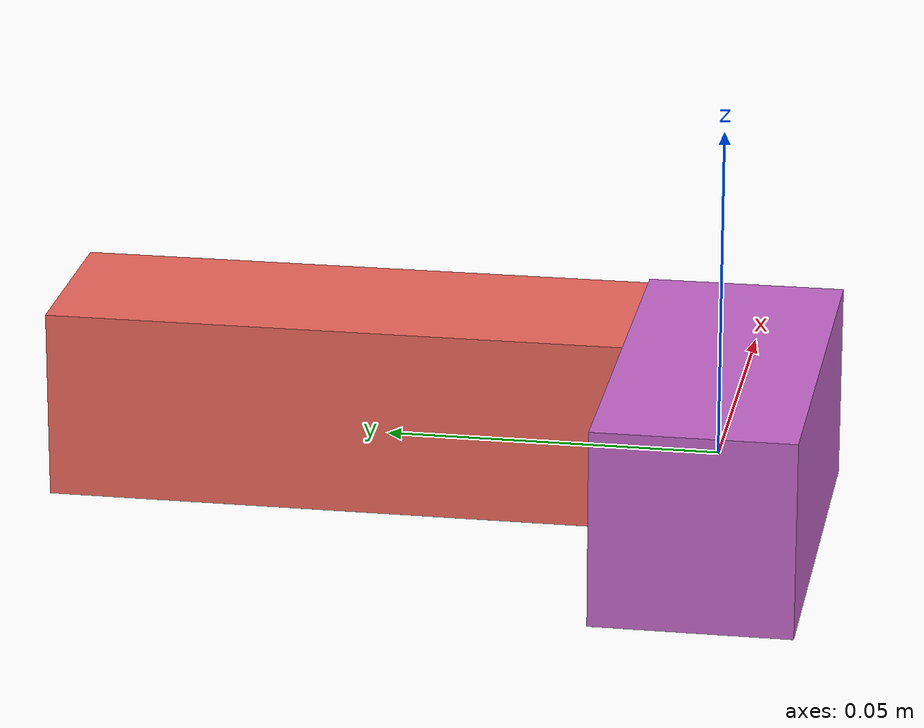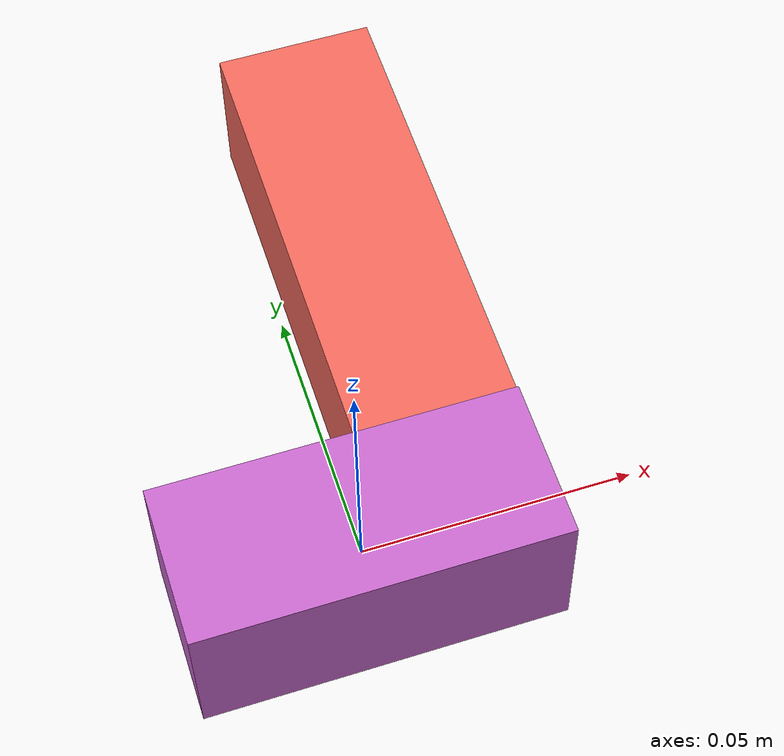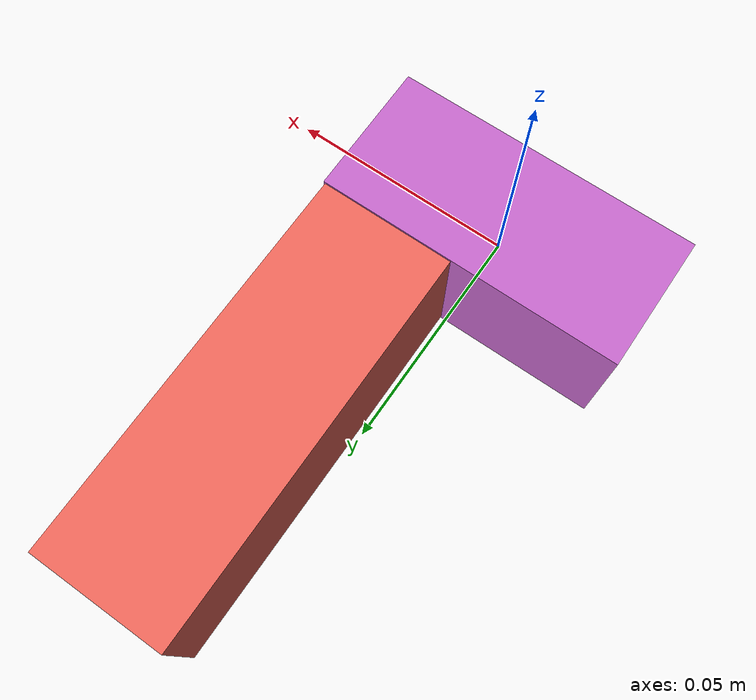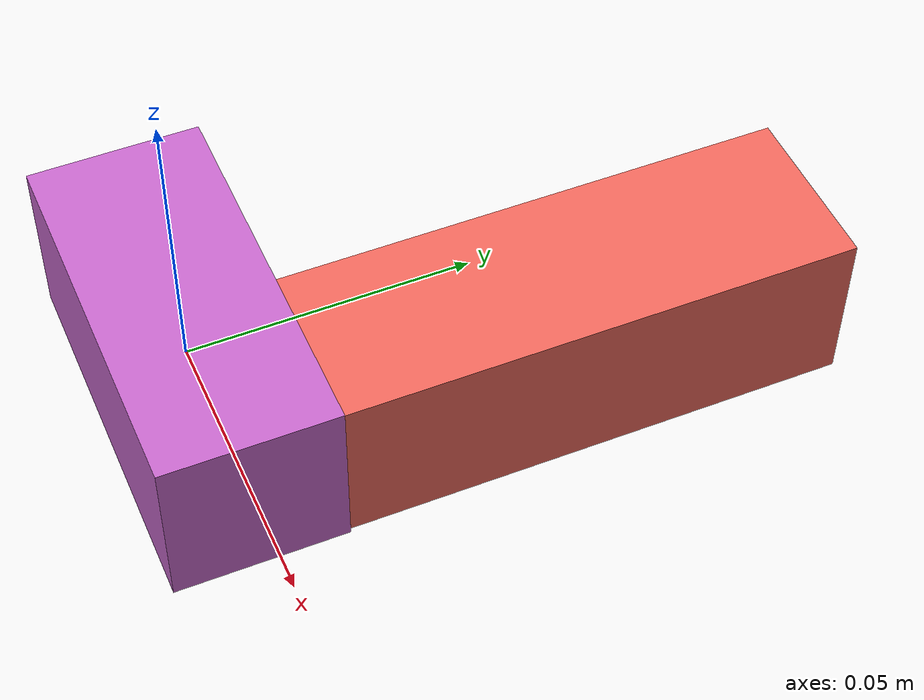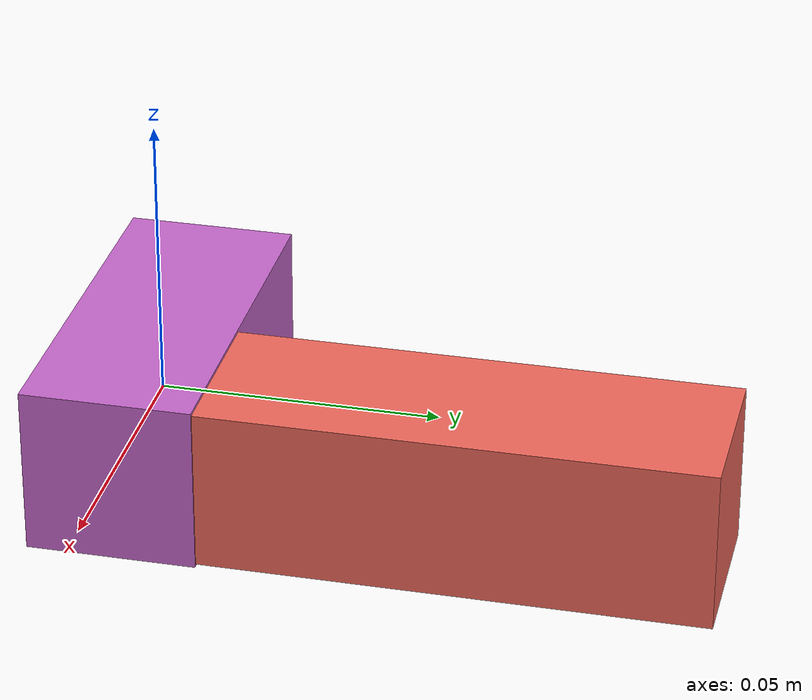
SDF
<sdf version="1.4"><world name="default"><model name="object0"><link name="link1"><pose>0 0 0 0 0 0</pose><inertial><pose>0 0 0 0 0 0</pose><mass>0.03648442818133094</mass><inertia><ixx>5.4726642271996415e-06</ixx><ixy>0</ixy><iyy>1.661519439117379e-05</iyy><ixz>0</ixz><iyz>0</iyz><izz>1.661519439117379e-05</izz></inertia></inertial><visual name="link1_visual"><pose>0 0  0 0 0 0</pose><geometry><box><size>0.0675637558913536 0.03 0.03</size></box></geometry><material><diffuse>0.7756489081730125 0.40550226643574266 0.7959513629315917 1</diffuse></material></visual><collision><pose>0 0  0 0 0 0</pose><geometry><box><size>0.0675637558913536 0.03 0.03</size></box></geometry></collision></link><link name="link2"><pose>0.018460525012790815 0.05040116388881576 0 0 0 0</pose><inertial><pose>0 0 0 0 0 0</pose><mass>0.05732125183066593</mass><inertia><ixx>5.7841544924935074e-05</ixx><ixy>0</ixy><iyy>8.316358286432447e-06</iyy><ixz>0</ixz><iyz>0</iyz><izz>5.812337441310252e-05</izz></inertia></inertial><visual name="link2_visual"><pose>0 0  0 0 0 0</pose><geometry><box><size>0.03 0.10615046635308507 0.028999999999999998</size></box></geometry><material><diffuse>0.9347828630201762 0.4054601729930318 0.3584531842419622 1</diffuse></material></visual><collision><pose>0 0  0 0 0 0</pose><geometry><box><size>0.03 0.10615046635308507 0.028999999999999998</size></box></geometry></collision></link><joint name="link_joint_0" type="fixed"><parent>link1</parent><child>link2</child><pose>0 0 0 0 0 0</pose><axis><xyz>0 0 1</xyz></axis></joint></model></world></sdf>
